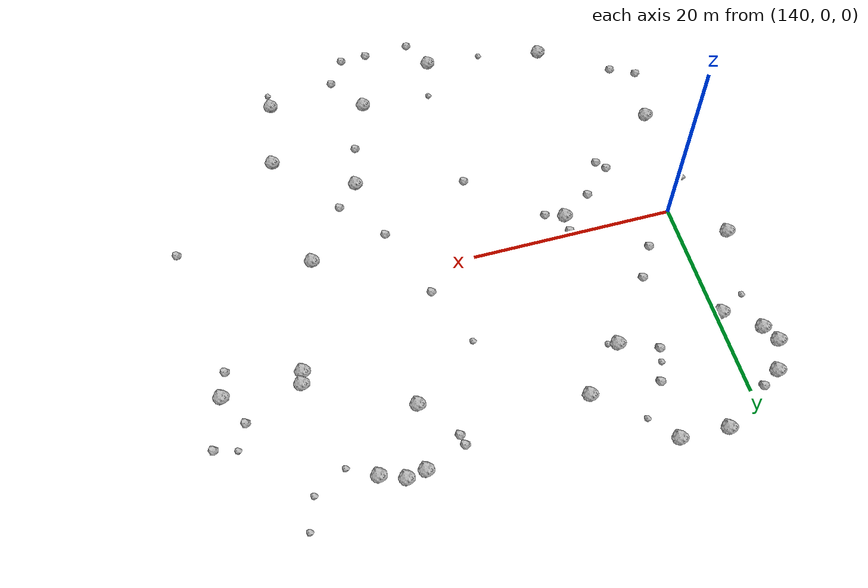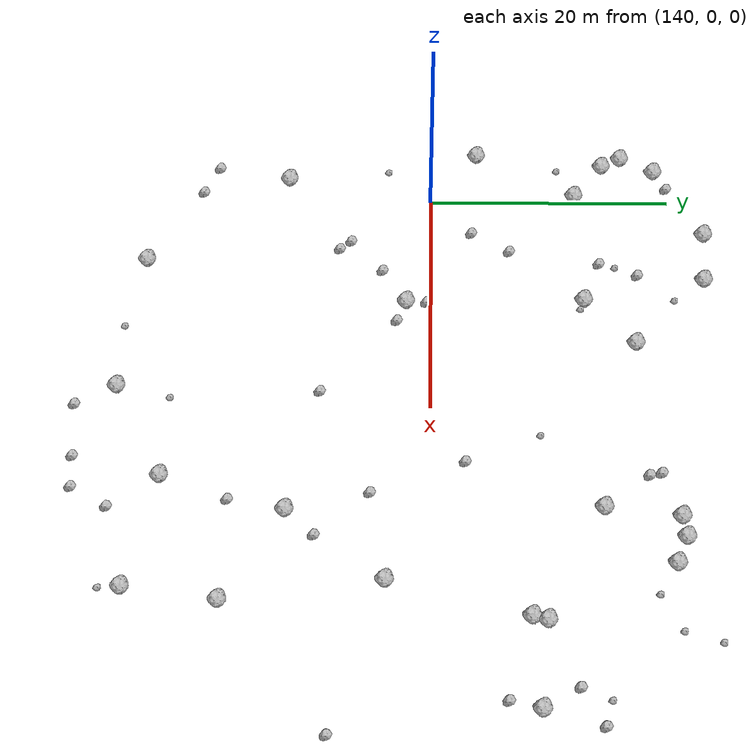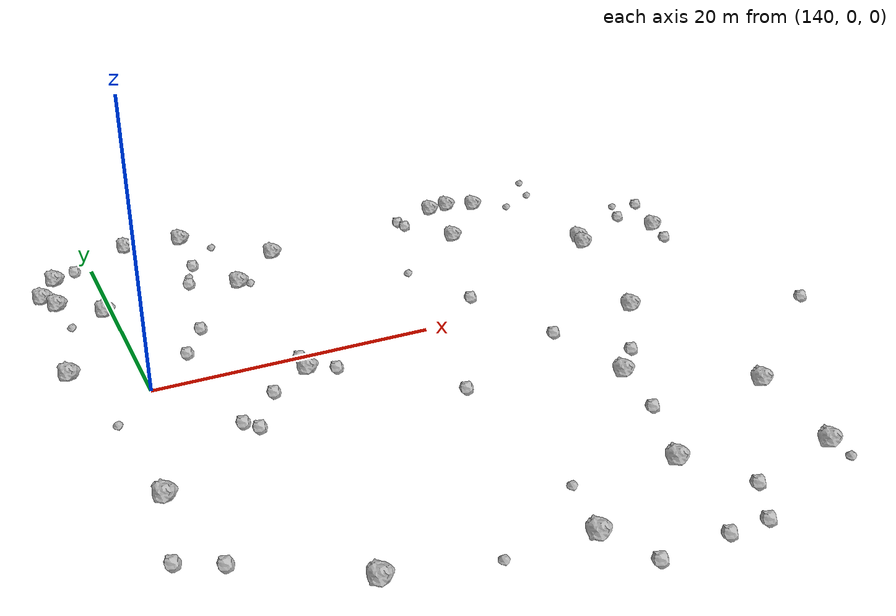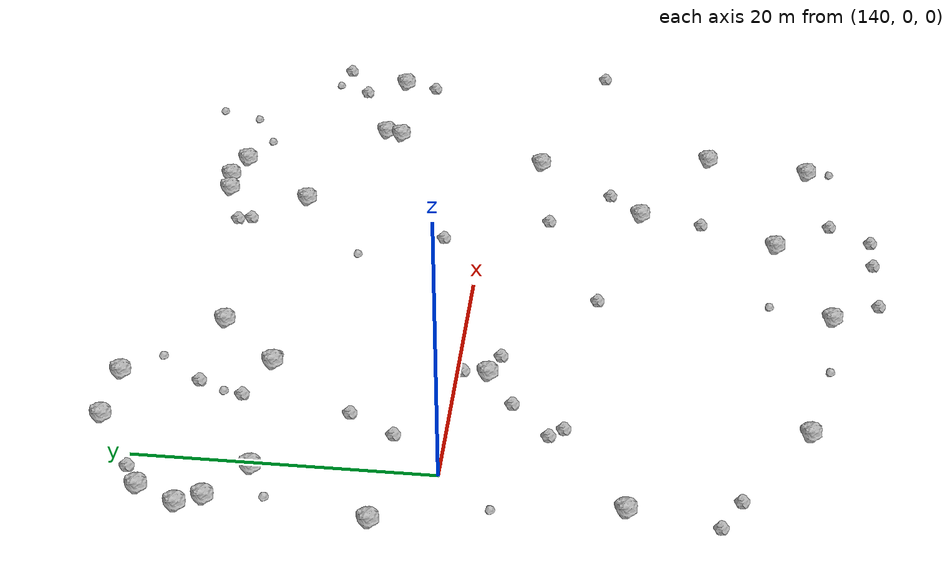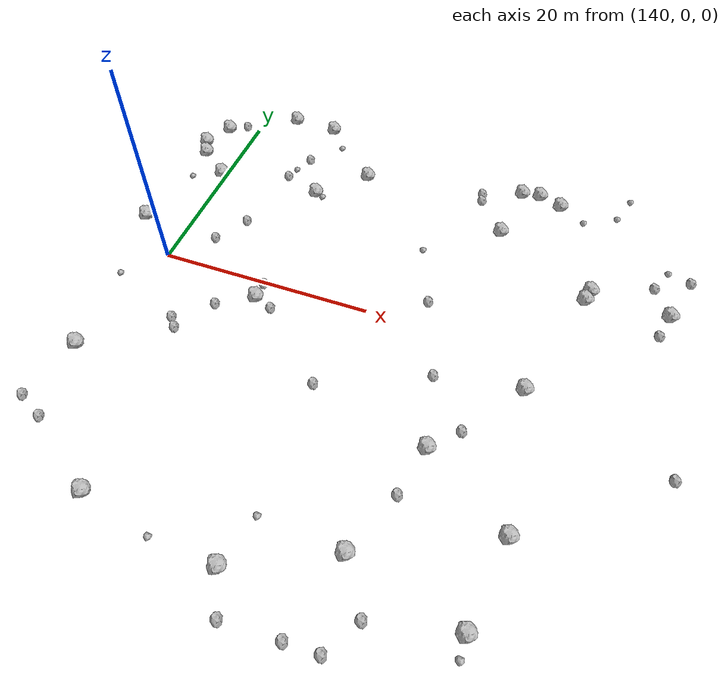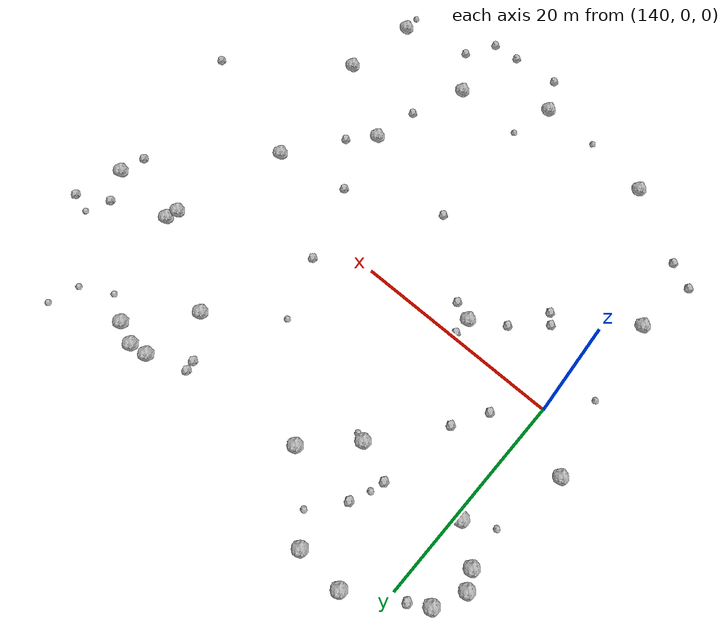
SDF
<sdf version="1.6">
 <world name="default">
  <include><uri>model://sun</uri></include>
  <model name="rock1_4_2">
   <include><uri>model://rock1</uri><pose>175.945690702219 -23.6227525750855 0.5 0 0 0</pose></include>
  </model>
  <model name="rock1_4_3">
   <include><uri>model://rock1</uri><pose>158.3673510018016 -25.210847033473488 0.5 0 0 0</pose></include>
  </model>
  <model name="rock1_4_4">
   <include><uri>model://rock1</uri><pose>154.0061468616198 16.69280266411532 0.5 0 0 0</pose></include>
  </model>
  <model name="rock1_4_5">
   <include><uri>model://rock1</uri><pose>178.11449714194686 7.728772906938488 0.5 0 0 0</pose></include>
  </model>
  <model name="rock1_4_6">
   <include><uri>model://rock1</uri><pose>137.03365416398452 18.8866291782262 0.5 0 0 0</pose></include>
  </model>
  <model name="rock1_4_7">
   <include><uri>model://rock1</uri><pose>175.20079950128115 -3.4924841727595854 0.5 0 0 0</pose></include>
  </model>
  <model name="rock1_4_8">
   <include><uri>model://rock1</uri><pose>169.6283160407383 19.543176662038015 0.5 0 0 0</pose></include>
  </model>
  <model name="rock1_4_9">
   <include><uri>model://rock1</uri><pose>185.51029122541402 8.331112227212614 0.5 0 0 0</pose></include>
  </model>
  <model name="rock1_4_10">
   <include><uri>model://rock1</uri><pose>169.2998465054668 -11.346081575050949 0.5 0 0 0</pose></include>
  </model>
  <model name="rock1_4_11">
   <include><uri>model://rock1</uri><pose>173.61518217636808 18.964204840715055 0.5 0 0 0</pose></include>
  </model>
  <model name="rock1_4_12">
   <include><uri>model://rock1</uri><pose>178.4102518203264 8.913398782275884 0.5 0 0 0</pose></include>
  </model>
  <model name="rock1_4_13">
   <include><uri>model://rock1</uri><pose>136.48626328644374 14.508966249654108 0.5 0 0 0</pose></include>
  </model>
  <model name="rock1_4_14">
   <include><uri>model://rock1</uri><pose>147.88341076444706 22.563032392516725 0.5 0 0 0</pose></include>
  </model>
  <model name="rock1_4_15">
   <include><uri>model://rock1</uri><pose>176.97068034444015 -16.160281849359357 0.5 0 0 0</pose></include>
  </model>
  <model name="rock1_4_16">
   <include><uri>model://rock1</uri><pose>150.1820766514831 -2.0291781749463276 0.5 0 0 0</pose></include>
  </model>
  <model name="rock1_4_17">
   <include><uri>model://rock1</uri><pose>135.67922970386783 16.11140733373078 0.5 0 0 0</pose></include>
  </model>
  <model name="rock1_4_18">
   <include><uri>model://rock1</uri><pose>149.92079221048635 12.586766724621555 0.5 0 0 0</pose></include>
  </model>
  <model name="rock1_4_19">
   <include><uri>model://rock1</uri><pose>143.39863710073774 22.791593315684494 0.5 0 0 0</pose></include>
  </model>
  <model name="rock1_4_20">
   <include><uri>model://rock1</uri><pose>146.2410861749626 -23.561695734949673 0.5 0 0 0</pose></include>
  </model>
  <model name="rock1_4_21">
   <include><uri>model://rock1</uri><pose>137.97155751304945 -11.999513605070916 0.5 0 0 0</pose></include>
  </model>
  <model name="rock1_4_22">
   <include><uri>model://rock1</uri><pose>168.9014920941616 13.541722172360139 0.5 0 0 0</pose></include>
  </model>
  <model name="rock1_4_23">
   <include><uri>model://rock1</uri><pose>166.4159302214823 -21.262958128581495 0.5 0 0 0</pose></include>
  </model>
  <model name="rock1_4_24">
   <include><uri>model://rock1</uri><pose>139.52725851917654 12.077340656562136 0.5 0 0 0</pose></include>
  </model>
  <model name="rock1_4_25">
   <include><uri>model://rock1</uri><pose>171.3898082862218 19.804090603297034 0.5 0 0 0</pose></include>
  </model>
  <model name="rock1_4_26">
   <include><uri>model://rock1</uri><pose>135.45869607826734 3.8690039386672623 0.5 0 0 0</pose></include>
  </model>
  <model name="rock2_4_0">
   <include><uri>model://rock2</uri><pose>171.42788786701976 -9.011677382313227 0.3 0 0 0</pose></include>
  </model>
  <model name="rock2_4_1">
   <include><uri>model://rock2</uri><pose>150.1918222164251 -0.3439308025965069 0.3 0 0 0</pose></include>
  </model>
  <model name="rock2_4_2">
   <include><uri>model://rock2</uri><pose>160.00988072546738 -28.462753799479433 0.3 0 0 0</pose></include>
  </model>
  <model name="rock2_4_3">
   <include><uri>model://rock2</uri><pose>187.66089662363274 -7.620902438609754 0.3 0 0 0</pose></include>
  </model>
  <model name="rock2_4_4">
   <include><uri>model://rock2</uri><pose>164.6907272515784 -28.23450596002533 0.3 0 0 0</pose></include>
  </model>
  <model name="rock2_4_5">
   <include><uri>model://rock2</uri><pose>145.15648260177133 6.538319707418069 0.3 0 0 0</pose></include>
  </model>
  <model name="rock2_4_6">
   <include><uri>model://rock2</uri><pose>144.99150341130158 -7.564646215852548 0.3 0 0 0</pose></include>
  </model>
  <model name="rock2_4_7">
   <include><uri>model://rock2</uri><pose>169.11010557231901 -25.21415434949817 0.3 0 0 0</pose></include>
  </model>
  <model name="rock2_4_8">
   <include><uri>model://rock2</uri><pose>144.21635821797952 -6.629255603166296 0.3 0 0 0</pose></include>
  </model>
  <model name="rock2_4_9">
   <include><uri>model://rock2</uri><pose>165.83160449139743 18.19024202845216 0.3 0 0 0</pose></include>
  </model>
  <model name="rock2_4_10">
   <include><uri>model://rock2</uri><pose>146.30998180437558 13.963731602005382 0.3 0 0 0</pose></include>
  </model>
  <model name="rock2_4_11">
   <include><uri>model://rock2</uri><pose>136.8516331009431 -17.95245666356203 0.3 0 0 0</pose></include>
  </model>
  <model name="rock2_4_12">
   <include><uri>model://rock2</uri><pose>184.8762171235034 5.879420502813083 0.3 0 0 0</pose></include>
  </model>
  <model name="rock2_4_13">
   <include><uri>model://rock2</uri><pose>168.4218194171574 -15.835981771163334 0.3 0 0 0</pose></include>
  </model>
  <model name="rock2_4_14">
   <include><uri>model://rock2</uri><pose>164.95705059039835 2.7596848891953556 0.3 0 0 0</pose></include>
  </model>
  <model name="rock2_4_15">
   <include><uri>model://rock2</uri><pose>166.03737620555168 17.213752340402337 0.3 0 0 0</pose></include>
  </model>
  <model name="rock2_4_16">
   <include><uri>model://rock2</uri><pose>183.79058759430913 11.228371144714444 0.3 0 0 0</pose></include>
  </model>
  <model name="rock2_4_17">
   <include><uri>model://rock2</uri><pose>167.74456786005675 -4.717864050754411 0.3 0 0 0</pose></include>
  </model>
  <model name="rock2_4_18">
   <include><uri>model://rock2</uri><pose>143.34253469728918 3.3997599561381833 0.3 0 0 0</pose></include>
  </model>
  <model name="rock2_4_19">
   <include><uri>model://rock2</uri><pose>158.68057865400158 -8.8666237850464 0.3 0 0 0</pose></include>
  </model>
  <model name="rock2_4_20">
   <include><uri>model://rock2</uri><pose>147.11420932657592 -3.984048969125787 0.3 0 0 0</pose></include>
  </model>
  <model name="rock2_4_21">
   <include><uri>model://rock2</uri><pose>186.8424847084544 12.987221614512265 0.3 0 0 0</pose></include>
  </model>
  <model name="rock2_4_22">
   <include><uri>model://rock2</uri><pose>139.33579250387095 -19.20002409075507 0.3 0 0 0</pose></include>
  </model>
  <model name="rock2_4_23">
   <include><uri>model://rock2</uri><pose>138.7041655716235 19.908606783468954 0.3 0 0 0</pose></include>
  </model>
  <model name="rock2_4_24">
   <include><uri>model://rock2</uri><pose>151.97566304213592 -2.7592950139708634 0.3 0 0 0</pose></include>
  </model>
  <model name="rock2_4_25">
   <include><uri>model://rock2</uri><pose>147.4335891539098 17.096986773892716 0.3 0 0 0</pose></include>
  </model>
  <model name="rock2_4_26">
   <include><uri>model://rock2</uri><pose>167.41407042643897 -28.14127891370592 0.3 0 0 0</pose></include>
  </model>
  <model name="rock3_4_0">
   <include><uri>model://rock3</uri><pose>179.19638274837524 19.1592700033286 0.2 0 0 0</pose></include>
  </model>
  <model name="rock3_4_1">
   <include><uri>model://rock3</uri><pose>184.7630014166577 13.520116569961516 0.2 0 0 0</pose></include>
  </model>
  <model name="rock3_4_2">
   <include><uri>model://rock3</uri><pose>146.62672600165226 15.250370640645528 0.2 0 0 0</pose></include>
  </model>
  <model name="rock3_4_3">
   <include><uri>model://rock3</uri><pose>149.80096949921716 20.04548923082455 0.2 0 0 0</pose></include>
  </model>
  <model name="rock3_4_4">
   <include><uri>model://rock3</uri><pose>180.08460185853326 22.078580224878408 0.2 0 0 0</pose></include>
  </model>
  <model name="rock3_4_5">
   <include><uri>model://rock3</uri><pose>152.62786112772045 -24.996957703522032 0.2 0 0 0</pose></include>
  </model>
  <model name="rock3_4_6">
   <include><uri>model://rock3</uri><pose>150.7023624010353 12.285541869771663 0.2 0 0 0</pose></include>
  </model>
  <model name="rock3_4_7">
   <include><uri>model://rock3</uri><pose>176.18104355917524 17.50286976856897 0.2 0 0 0</pose></include>
  </model>
  <model name="rock3_4_8">
   <include><uri>model://rock3</uri><pose>162.52453317215787 8.711153208568113 0.2 0 0 0</pose></include>
  </model>
  <model name="rock3_4_9">
   <include><uri>model://rock3</uri><pose>137.08351355670945 -3.5906904864015985 0.2 0 0 0</pose></include>
  </model>
  <model name="rock3_4_10">
   <include><uri>model://rock3</uri><pose>136.83150438991336 10.678086313380689 0.2 0 0 0</pose></include>
  </model>
  <model name="rock3_4_11">
   <include><uri>model://rock3</uri><pose>159.32111550788727 -20.89134189917008 0.2 0 0 0</pose></include>
  </model>
  <model name="rock3_4_12">
   <include><uri>model://rock3</uri><pose>175.96771066385799 -25.37603205690895 0.2 0 0 0</pose></include>
  </model>
 </world>
</sdf>
